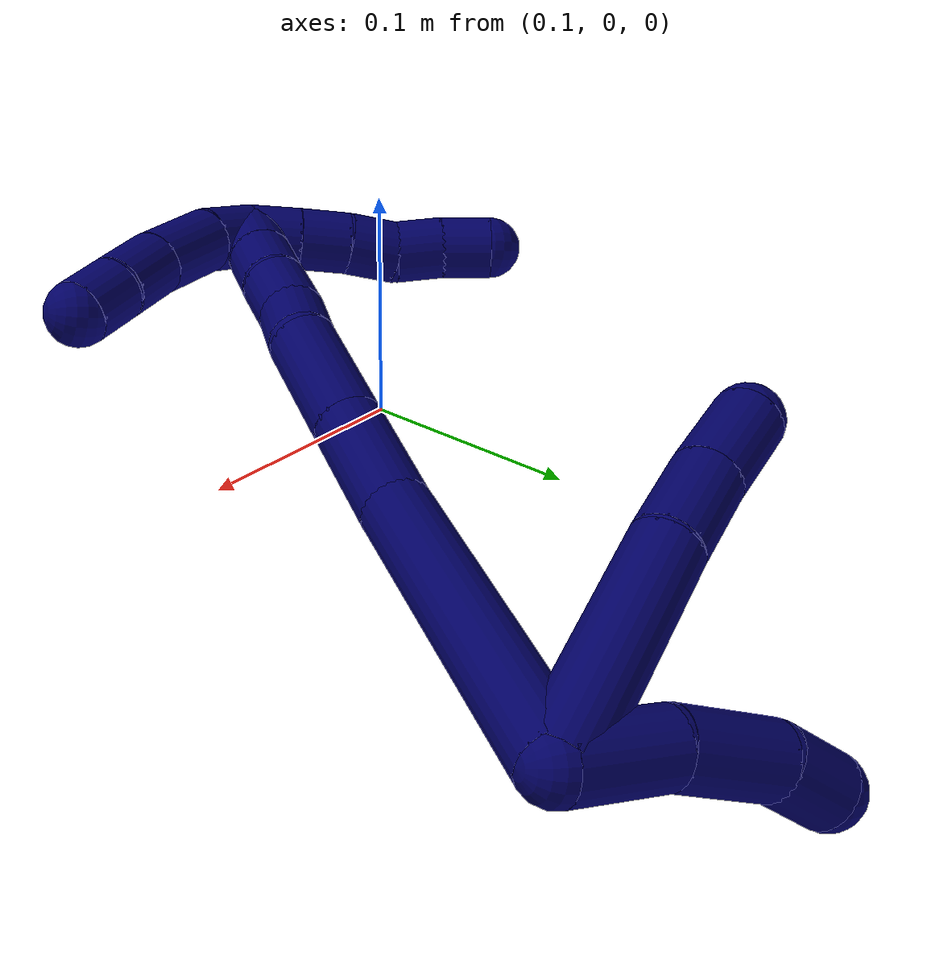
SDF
<sdf version="1.7">
 <world name="default">
  <model name="7">
   <static>0</static>
   <link name="7">
    <collision name="collision-cylinder-e_1_2_8">
     <pose>-0.016623 -0.0244 -0.028067 2.42597 -0.420319 -1.03687</pose>
     <geometry><cylinder><radius>0.0125</radius><length>0.081473</length></cylinder></geometry>
     <surface>
      <friction><ode><mu>1.16</mu><mu2>1.16</mu2><slip1>0</slip1><slip2>0</slip2></ode></friction>
      <contact><ode><kp>1e+06</kp><kd>1</kd><max_vel>0</max_vel><min_depth>0.001</min_depth></ode></contact>
     </surface>
    </collision>
    <visual name="visual-cylinder-e_1_2_8">
     <pose>-0.016623 -0.0244 -0.028067 2.42597 -0.420319 -1.03687</pose>
     <geometry><cylinder><radius>0.0125</radius><length>0.081473</length></cylinder></geometry>
     <material><ambient>0.003922 0 0.403922 1</ambient></material>
    </visual>
    <collision name="collision-cylinder-e_2_8_9">
     <pose>-0.038283 -0.059264 -0.06876 2.44957 -0.298094 -0.789331</pose>
     <geometry><cylinder><radius>0.0125</radius><length>0.034308</length></cylinder></geometry>
     <surface>
      <friction><ode><mu>1.16</mu><mu2>1.16</mu2><slip1>0</slip1><slip2>0</slip2></ode></friction>
      <contact><ode><kp>1e+06</kp><kd>1</kd><max_vel>0</max_vel><min_depth>0.001</min_depth></ode></contact>
     </surface>
    </collision>
    <visual name="visual-cylinder-e_2_8_9">
     <pose>-0.038283 -0.059264 -0.06876 2.44957 -0.298094 -0.789331</pose>
     <geometry><cylinder><radius>0.0125</radius><length>0.034308</length></cylinder></geometry>
     <material><ambient>0.003922 0 0.403922 1</ambient></material>
    </visual>
    <collision name="collision-cylinder-e_3_9_6">
     <pose>-0.048252 -0.079432 -0.094585 2.50757 -0.292326 -0.843569</pose>
     <geometry><cylinder><radius>0.0125</radius><length>0.034219</length></cylinder></geometry>
     <surface>
      <friction><ode><mu>1.16</mu><mu2>1.16</mu2><slip1>0</slip1><slip2>0</slip2></ode></friction>
      <contact><ode><kp>1e+06</kp><kd>1</kd><max_vel>0</max_vel><min_depth>0.001</min_depth></ode></contact>
     </surface>
    </collision>
    <visual name="visual-cylinder-e_3_9_6">
     <pose>-0.048252 -0.079432 -0.094585 2.50757 -0.292326 -0.843569</pose>
     <geometry><cylinder><radius>0.0125</radius><length>0.034219</length></cylinder></geometry>
     <material><ambient>0.003922 0 0.403922 1</ambient></material>
    </visual>
    <collision name="collision-cylinder-e_1_2_10">
     <pose>-0.000201 -0.000164 -0.018506 3.13275 -0.01085 -1.77424</pose>
     <geometry><cylinder><radius>0.0125</radius><length>0.037015</length></cylinder></geometry>
     <surface>
      <friction><ode><mu>1.16</mu><mu2>1.16</mu2><slip1>0</slip1><slip2>0</slip2></ode></friction>
      <contact><ode><kp>1e+06</kp><kd>1</kd><max_vel>0</max_vel><min_depth>0.001</min_depth></ode></contact>
     </surface>
    </collision>
    <visual name="visual-cylinder-e_1_2_10">
     <pose>-0.000201 -0.000164 -0.018506 3.13275 -0.01085 -1.77424</pose>
     <geometry><cylinder><radius>0.0125</radius><length>0.037015</length></cylinder></geometry>
     <material><ambient>0.003922 0 0.403922 1</ambient></material>
    </visual>
    <collision name="collision-cylinder-e_2_10_11">
     <pose>0.003115 0.001255 -0.055545 -3.05641 0.186859 -2.28793</pose>
     <geometry><cylinder><radius>0.0125</radius><length>0.037861</length></cylinder></geometry>
     <surface>
      <friction><ode><mu>1.16</mu><mu2>1.16</mu2><slip1>0</slip1><slip2>0</slip2></ode></friction>
      <contact><ode><kp>1e+06</kp><kd>1</kd><max_vel>0</max_vel><min_depth>0.001</min_depth></ode></contact>
     </surface>
    </collision>
    <visual name="visual-cylinder-e_2_10_11">
     <pose>0.003115 0.001255 -0.055545 -3.05641 0.186859 -2.28793</pose>
     <geometry><cylinder><radius>0.0125</radius><length>0.037861</length></cylinder></geometry>
     <material><ambient>0.003922 0 0.403922 1</ambient></material>
    </visual>
    <collision name="collision-cylinder-e_3_11_5">
     <pose>0.01207 0.00484 -0.085224 -2.96386 0.447737 -2.39556</pose>
     <geometry><cylinder><radius>0.0125</radius><length>0.025124</length></cylinder></geometry>
     <surface>
      <friction><ode><mu>1.16</mu><mu2>1.16</mu2><slip1>0</slip1><slip2>0</slip2></ode></friction>
      <contact><ode><kp>1e+06</kp><kd>1</kd><max_vel>0</max_vel><min_depth>0.001</min_depth></ode></contact>
     </surface>
    </collision>
    <visual name="visual-cylinder-e_3_11_5">
     <pose>0.01207 0.00484 -0.085224 -2.96386 0.447737 -2.39556</pose>
     <geometry><cylinder><radius>0.0125</radius><length>0.025124</length></cylinder></geometry>
     <material><ambient>0.003922 0 0.403922 1</ambient></material>
    </visual>
    <collision name="collision-cylinder-e_1_2_12">
     <pose>-0.000542 -0.061497 -0.004225 1.63939 -0.008788 -0.009413</pose>
     <geometry><cylinder><radius>0.0125</radius><length>0.123288</length></cylinder></geometry>
     <surface>
      <friction><ode><mu>1.16</mu><mu2>1.16</mu2><slip1>0</slip1><slip2>0</slip2></ode></friction>
      <contact><ode><kp>1e+06</kp><kd>1</kd><max_vel>0</max_vel><min_depth>0.001</min_depth></ode></contact>
     </surface>
    </collision>
    <visual name="visual-cylinder-e_1_2_12">
     <pose>-0.000542 -0.061497 -0.004225 1.63939 -0.008788 -0.009413</pose>
     <geometry><cylinder><radius>0.0125</radius><length>0.123288</length></cylinder></geometry>
     <material><ambient>0.003922 0 0.403922 1</ambient></material>
    </visual>
    <collision name="collision-cylinder-e_2_12_13">
     <pose>-0.005071 -0.144069 -0.007785 1.53925 -0.186911 -0.181138</pose>
     <geometry><cylinder><radius>0.0125</radius><length>0.042919</length></cylinder></geometry>
     <surface>
      <friction><ode><mu>1.16</mu><mu2>1.16</mu2><slip1>0</slip1><slip2>0</slip2></ode></friction>
      <contact><ode><kp>1e+06</kp><kd>1</kd><max_vel>0</max_vel><min_depth>0.001</min_depth></ode></contact>
     </surface>
    </collision>
    <visual name="visual-cylinder-e_2_12_13">
     <pose>-0.005071 -0.144069 -0.007785 1.53925 -0.186911 -0.181138</pose>
     <geometry><cylinder><radius>0.0125</radius><length>0.042919</length></cylinder></geometry>
     <material><ambient>0.003922 0 0.403922 1</ambient></material>
    </visual>
    <collision name="collision-cylinder-e_3_13_14">
     <pose>-0.013316 -0.187717 -0.006511 1.54381 -0.186328 -0.181394</pose>
     <geometry><cylinder><radius>0.0125</radius><length>0.045957</length></cylinder></geometry>
     <surface>
      <friction><ode><mu>1.16</mu><mu2>1.16</mu2><slip1>0</slip1><slip2>0</slip2></ode></friction>
      <contact><ode><kp>1e+06</kp><kd>1</kd><max_vel>0</max_vel><min_depth>0.001</min_depth></ode></contact>
     </surface>
    </collision>
    <visual name="visual-cylinder-e_3_13_14">
     <pose>-0.013316 -0.187717 -0.006511 1.54381 -0.186328 -0.181394</pose>
     <geometry><cylinder><radius>0.0125</radius><length>0.045957</length></cylinder></geometry>
     <material><ambient>0.003922 0 0.403922 1</ambient></material>
    </visual>
    <collision name="collision-cylinder-e_4_14_15">
     <pose>-0.017955 -0.220924 -0.007925 1.75886 -0.035287 -0.042634</pose>
     <geometry><cylinder><radius>0.0125</radius><length>0.021664</length></cylinder></geometry>
     <surface>
      <friction><ode><mu>1.16</mu><mu2>1.16</mu2><slip1>0</slip1><slip2>0</slip2></ode></friction>
      <contact><ode><kp>1e+06</kp><kd>1</kd><max_vel>0</max_vel><min_depth>0.001</min_depth></ode></contact>
     </surface>
    </collision>
    <visual name="visual-cylinder-e_4_14_15">
     <pose>-0.017955 -0.220924 -0.007925 1.75886 -0.035287 -0.042634</pose>
     <geometry><cylinder><radius>0.0125</radius><length>0.021664</length></cylinder></geometry>
     <material><ambient>0.003922 0 0.403922 1</ambient></material>
    </visual>
    <collision name="collision-cylinder-e_5_15_16">
     <pose>-0.019688 -0.242072 -0.010031 1.57862 -0.127821 -0.128823</pose>
     <geometry><cylinder><radius>0.0125</radius><length>0.021201</length></cylinder></geometry>
     <surface>
      <friction><ode><mu>1.16</mu><mu2>1.16</mu2><slip1>0</slip1><slip2>0</slip2></ode></friction>
      <contact><ode><kp>1e+06</kp><kd>1</kd><max_vel>0</max_vel><min_depth>0.001</min_depth></ode></contact>
     </surface>
    </collision>
    <visual name="visual-cylinder-e_5_15_16">
     <pose>-0.019688 -0.242072 -0.010031 1.57862 -0.127821 -0.128823</pose>
     <geometry><cylinder><radius>0.0125</radius><length>0.021201</length></cylinder></geometry>
     <material><ambient>0.003922 0 0.403922 1</ambient></material>
    </visual>
    <collision name="collision-cylinder-e_6_16_17">
     <pose>-0.021263 -0.264099 -0.011518 1.69217 -0.019238 -0.021727</pose>
     <geometry><cylinder><radius>0.0125</radius><length>0.0232</length></cylinder></geometry>
     <surface>
      <friction><ode><mu>1.16</mu><mu2>1.16</mu2><slip1>0</slip1><slip2>0</slip2></ode></friction>
      <contact><ode><kp>1e+06</kp><kd>1</kd><max_vel>0</max_vel><min_depth>0.001</min_depth></ode></contact>
     </surface>
    </collision>
    <visual name="visual-cylinder-e_6_16_17">
     <pose>-0.021263 -0.264099 -0.011518 1.69217 -0.019238 -0.021727</pose>
     <geometry><cylinder><radius>0.0125</radius><length>0.0232</length></cylinder></geometry>
     <material><ambient>0.003922 0 0.403922 1</ambient></material>
    </visual>
    <collision name="collision-cylinder-e_7_17_1">
     <pose>-0.021704 -0.28641 -0.014269 1.69489 -0.020024 -0.022677</pose>
     <geometry><cylinder><radius>0.0125</radius><length>0.02177</length></cylinder></geometry>
     <surface>
      <friction><ode><mu>1.16</mu><mu2>1.16</mu2><slip1>0</slip1><slip2>0</slip2></ode></friction>
      <contact><ode><kp>1e+06</kp><kd>1</kd><max_vel>0</max_vel><min_depth>0.001</min_depth></ode></contact>
     </surface>
    </collision>
    <visual name="visual-cylinder-e_7_17_1">
     <pose>-0.021704 -0.28641 -0.014269 1.69489 -0.020024 -0.022677</pose>
     <geometry><cylinder><radius>0.0125</radius><length>0.02177</length></cylinder></geometry>
     <material><ambient>0.003922 0 0.403922 1</ambient></material>
    </visual>
    <collision name="collision-cylinder-e_1_1_18">
     <pose>-0.022019 -0.293476 -0.005099 -0.341129 -0.008679 0.001495</pose>
     <geometry><cylinder><radius>0.0125</radius><length>0.022322</length></cylinder></geometry>
     <surface>
      <friction><ode><mu>1.16</mu><mu2>1.16</mu2><slip1>0</slip1><slip2>0</slip2></ode></friction>
      <contact><ode><kp>1e+06</kp><kd>1</kd><max_vel>0</max_vel><min_depth>0.001</min_depth></ode></contact>
     </surface>
    </collision>
    <visual name="visual-cylinder-e_1_1_18">
     <pose>-0.022019 -0.293476 -0.005099 -0.341129 -0.008679 0.001495</pose>
     <geometry><cylinder><radius>0.0125</radius><length>0.022322</length></cylinder></geometry>
     <material><ambient>0.003922 0 0.403922 1</ambient></material>
    </visual>
    <collision name="collision-cylinder-e_2_18_19">
     <pose>-0.020303 -0.280996 0.01854 -0.587933 0.114446 -0.034681</pose>
     <geometry><cylinder><radius>0.0125</radius><length>0.031745</length></cylinder></geometry>
     <surface>
      <friction><ode><mu>1.16</mu><mu2>1.16</mu2><slip1>0</slip1><slip2>0</slip2></ode></friction>
      <contact><ode><kp>1e+06</kp><kd>1</kd><max_vel>0</max_vel><min_depth>0.001</min_depth></ode></contact>
     </surface>
    </collision>
    <visual name="visual-cylinder-e_2_18_19">
     <pose>-0.020303 -0.280996 0.01854 -0.587933 0.114446 -0.034681</pose>
     <geometry><cylinder><radius>0.0125</radius><length>0.031745</length></cylinder></geometry>
     <material><ambient>0.003922 0 0.403922 1</ambient></material>
    </visual>
    <collision name="collision-cylinder-e_3_19_20">
     <pose>-0.016746 -0.264051 0.041171 -0.711461 0.138029 -0.051353</pose>
     <geometry><cylinder><radius>0.0125</radius><length>0.025356</length></cylinder></geometry>
     <surface>
      <friction><ode><mu>1.16</mu><mu2>1.16</mu2><slip1>0</slip1><slip2>0</slip2></ode></friction>
      <contact><ode><kp>1e+06</kp><kd>1</kd><max_vel>0</max_vel><min_depth>0.001</min_depth></ode></contact>
     </surface>
    </collision>
    <visual name="visual-cylinder-e_3_19_20">
     <pose>-0.016746 -0.264051 0.041171 -0.711461 0.138029 -0.051353</pose>
     <geometry><cylinder><radius>0.0125</radius><length>0.025356</length></cylinder></geometry>
     <material><ambient>0.003922 0 0.403922 1</ambient></material>
    </visual>
    <collision name="collision-cylinder-e_4_20_4">
     <pose>-0.012683 -0.249935 0.058775 -0.631301 0.227347 -0.074531</pose>
     <geometry><cylinder><radius>0.0125</radius><length>0.020578</length></cylinder></geometry>
     <surface>
      <friction><ode><mu>1.16</mu><mu2>1.16</mu2><slip1>0</slip1><slip2>0</slip2></ode></friction>
      <contact><ode><kp>1e+06</kp><kd>1</kd><max_vel>0</max_vel><min_depth>0.001</min_depth></ode></contact>
     </surface>
    </collision>
    <visual name="visual-cylinder-e_4_20_4">
     <pose>-0.012683 -0.249935 0.058775 -0.631301 0.227347 -0.074531</pose>
     <geometry><cylinder><radius>0.0125</radius><length>0.020578</length></cylinder></geometry>
     <material><ambient>0.003922 0 0.403922 1</ambient></material>
    </visual>
    <collision name="collision-cylinder-e_1_1_21">
     <pose>-0.022937 -0.294487 -0.025185 -2.86441 -0.101725 0.699866</pose>
     <geometry><cylinder><radius>0.0125</radius><length>0.02</length></cylinder></geometry>
     <surface>
      <friction><ode><mu>1.16</mu><mu2>1.16</mu2><slip1>0</slip1><slip2>0</slip2></ode></friction>
      <contact><ode><kp>1e+06</kp><kd>1</kd><max_vel>0</max_vel><min_depth>0.001</min_depth></ode></contact>
     </surface>
    </collision>
    <visual name="visual-cylinder-e_1_1_21">
     <pose>-0.022937 -0.294487 -0.025185 -2.86441 -0.101725 0.699866</pose>
     <geometry><cylinder><radius>0.0125</radius><length>0.02</length></cylinder></geometry>
     <material><ambient>0.003922 0 0.403922 1</ambient></material>
    </visual>
    <collision name="collision-cylinder-e_2_21_22">
     <pose>-0.024701 -0.289067 -0.044353 -2.86769 -0.074849 0.530566</pose>
     <geometry><cylinder><radius>0.0125</radius><length>0.02</length></cylinder></geometry>
     <surface>
      <friction><ode><mu>1.16</mu><mu2>1.16</mu2><slip1>0</slip1><slip2>0</slip2></ode></friction>
      <contact><ode><kp>1e+06</kp><kd>1</kd><max_vel>0</max_vel><min_depth>0.001</min_depth></ode></contact>
     </surface>
    </collision>
    <visual name="visual-cylinder-e_2_21_22">
     <pose>-0.024701 -0.289067 -0.044353 -2.86769 -0.074849 0.530566</pose>
     <geometry><cylinder><radius>0.0125</radius><length>0.02</length></cylinder></geometry>
     <material><ambient>0.003922 0 0.403922 1</ambient></material>
    </visual>
    <collision name="collision-cylinder-e_3_22_23">
     <pose>-0.025117 -0.283739 -0.063596 -2.87521 0.033152 -0.246202</pose>
     <geometry><cylinder><radius>0.0125</radius><length>0.02</length></cylinder></geometry>
     <surface>
      <friction><ode><mu>1.16</mu><mu2>1.16</mu2><slip1>0</slip1><slip2>0</slip2></ode></friction>
      <contact><ode><kp>1e+06</kp><kd>1</kd><max_vel>0</max_vel><min_depth>0.001</min_depth></ode></contact>
     </surface>
    </collision>
    <visual name="visual-cylinder-e_3_22_23">
     <pose>-0.025117 -0.283739 -0.063596 -2.87521 0.033152 -0.246202</pose>
     <geometry><cylinder><radius>0.0125</radius><length>0.02</length></cylinder></geometry>
     <material><ambient>0.003922 0 0.403922 1</ambient></material>
    </visual>
    <collision name="collision-cylinder-e_4_23_24">
     <pose>-0.027387 -0.278757 -0.082603 -2.89562 -0.263169 1.63905</pose>
     <geometry><cylinder><radius>0.0125</radius><length>0.02</length></cylinder></geometry>
     <surface>
      <friction><ode><mu>1.16</mu><mu2>1.16</mu2><slip1>0</slip1><slip2>0</slip2></ode></friction>
      <contact><ode><kp>1e+06</kp><kd>1</kd><max_vel>0</max_vel><min_depth>0.001</min_depth></ode></contact>
     </surface>
    </collision>
    <visual name="visual-cylinder-e_4_23_24">
     <pose>-0.027387 -0.278757 -0.082603 -2.89562 -0.263169 1.63905</pose>
     <geometry><cylinder><radius>0.0125</radius><length>0.02</length></cylinder></geometry>
     <material><ambient>0.003922 0 0.403922 1</ambient></material>
    </visual>
    <collision name="collision-cylinder-e_5_24_3">
     <pose>-0.032202 -0.272467 -0.100889 -2.7258 -0.223274 0.976964</pose>
     <geometry><cylinder><radius>0.0125</radius><length>0.02</length></cylinder></geometry>
     <surface>
      <friction><ode><mu>1.16</mu><mu2>1.16</mu2><slip1>0</slip1><slip2>0</slip2></ode></friction>
      <contact><ode><kp>1e+06</kp><kd>1</kd><max_vel>0</max_vel><min_depth>0.001</min_depth></ode></contact>
     </surface>
    </collision>
    <visual name="visual-cylinder-e_5_24_3">
     <pose>-0.032202 -0.272467 -0.100889 -2.7258 -0.223274 0.976964</pose>
     <geometry><cylinder><radius>0.0125</radius><length>0.02</length></cylinder></geometry>
     <material><ambient>0.003922 0 0.403922 1</ambient></material>
    </visual>
    <collision name="collision-sphere-3">
     <pose>-0.034417 -0.268528 -0.10981 0 -0 0</pose>
     <geometry><sphere><radius>0.0125</radius></sphere></geometry>
     <surface>
      <friction><ode><mu>1.16</mu><mu2>1.16</mu2><slip1>0</slip1><slip2>0</slip2></ode></friction>
      <contact><ode><kp>1e+06</kp><kd>1</kd><max_vel>0</max_vel><min_depth>0.001</min_depth></ode></contact>
     </surface>
    </collision>
    <visual name="visual-sphere-3">
     <pose>-0.034417 -0.268528 -0.10981 0 -0 0</pose>
     <geometry><sphere><radius>0.0125</radius></sphere></geometry>
     <material><ambient>0.003922 0 0.403922 1</ambient></material>
    </visual>
    <collision name="collision-sphere-24">
     <pose>-0.029988 -0.276406 -0.091968 0 -0 0</pose>
     <geometry><sphere><radius>0.0125</radius></sphere></geometry>
     <surface>
      <friction><ode><mu>1.16</mu><mu2>1.16</mu2><slip1>0</slip1><slip2>0</slip2></ode></friction>
      <contact><ode><kp>1e+06</kp><kd>1</kd><max_vel>0</max_vel><min_depth>0.001</min_depth></ode></contact>
     </surface>
    </collision>
    <visual name="visual-sphere-24">
     <pose>-0.029988 -0.276406 -0.091968 0 -0 0</pose>
     <geometry><sphere><radius>0.0125</radius></sphere></geometry>
     <material><ambient>0.003922 0 0.403922 1</ambient></material>
    </visual>
    <collision name="collision-sphere-23">
     <pose>-0.024785 -0.281108 -0.073238 0 -0 0</pose>
     <geometry><sphere><radius>0.0125</radius></sphere></geometry>
     <surface>
      <friction><ode><mu>1.16</mu><mu2>1.16</mu2><slip1>0</slip1><slip2>0</slip2></ode></friction>
      <contact><ode><kp>1e+06</kp><kd>1</kd><max_vel>0</max_vel><min_depth>0.001</min_depth></ode></contact>
     </surface>
    </collision>
    <visual name="visual-sphere-23">
     <pose>-0.024785 -0.281108 -0.073238 0 -0 0</pose>
     <geometry><sphere><radius>0.0125</radius></sphere></geometry>
     <material><ambient>0.003922 0 0.403922 1</ambient></material>
    </visual>
    <collision name="collision-sphere-22">
     <pose>-0.025448 -0.28637 -0.053954 0 -0 0</pose>
     <geometry><sphere><radius>0.0125</radius></sphere></geometry>
     <surface>
      <friction><ode><mu>1.16</mu><mu2>1.16</mu2><slip1>0</slip1><slip2>0</slip2></ode></friction>
      <contact><ode><kp>1e+06</kp><kd>1</kd><max_vel>0</max_vel><min_depth>0.001</min_depth></ode></contact>
     </surface>
    </collision>
    <visual name="visual-sphere-22">
     <pose>-0.025448 -0.28637 -0.053954 0 -0 0</pose>
     <geometry><sphere><radius>0.0125</radius></sphere></geometry>
     <material><ambient>0.003922 0 0.403922 1</ambient></material>
    </visual>
    <collision name="collision-sphere-21">
     <pose>-0.023953 -0.291765 -0.034753 0 -0 0</pose>
     <geometry><sphere><radius>0.0125</radius></sphere></geometry>
     <surface>
      <friction><ode><mu>1.16</mu><mu2>1.16</mu2><slip1>0</slip1><slip2>0</slip2></ode></friction>
      <contact><ode><kp>1e+06</kp><kd>1</kd><max_vel>0</max_vel><min_depth>0.001</min_depth></ode></contact>
     </surface>
    </collision>
    <visual name="visual-sphere-21">
     <pose>-0.023953 -0.291765 -0.034753 0 -0 0</pose>
     <geometry><sphere><radius>0.0125</radius></sphere></geometry>
     <material><ambient>0.003922 0 0.403922 1</ambient></material>
    </visual>
    <collision name="collision-sphere-4">
     <pose>-0.010364 -0.244019 0.066866 0 -0 0</pose>
     <geometry><sphere><radius>0.0125</radius></sphere></geometry>
     <surface>
      <friction><ode><mu>1.16</mu><mu2>1.16</mu2><slip1>0</slip1><slip2>0</slip2></ode></friction>
      <contact><ode><kp>1e+06</kp><kd>1</kd><max_vel>0</max_vel><min_depth>0.001</min_depth></ode></contact>
     </surface>
    </collision>
    <visual name="visual-sphere-4">
     <pose>-0.010364 -0.244019 0.066866 0 -0 0</pose>
     <geometry><sphere><radius>0.0125</radius></sphere></geometry>
     <material><ambient>0.003922 0 0.403922 1</ambient></material>
    </visual>
    <collision name="collision-sphere-20">
     <pose>-0.015002 -0.255852 0.050683 0 -0 0</pose>
     <geometry><sphere><radius>0.0125</radius></sphere></geometry>
     <surface>
      <friction><ode><mu>1.16</mu><mu2>1.16</mu2><slip1>0</slip1><slip2>0</slip2></ode></friction>
      <contact><ode><kp>1e+06</kp><kd>1</kd><max_vel>0</max_vel><min_depth>0.001</min_depth></ode></contact>
     </surface>
    </collision>
    <visual name="visual-sphere-20">
     <pose>-0.015002 -0.255852 0.050683 0 -0 0</pose>
     <geometry><sphere><radius>0.0125</radius></sphere></geometry>
     <material><ambient>0.003922 0 0.403922 1</ambient></material>
    </visual>
    <collision name="collision-sphere-11">
     <pose>0.006632 0.002838 -0.074079 0 -0 0</pose>
     <geometry><sphere><radius>0.0125</radius></sphere></geometry>
     <surface>
      <friction><ode><mu>1.16</mu><mu2>1.16</mu2><slip1>0</slip1><slip2>0</slip2></ode></friction>
      <contact><ode><kp>1e+06</kp><kd>1</kd><max_vel>0</max_vel><min_depth>0.001</min_depth></ode></contact>
     </surface>
    </collision>
    <visual name="visual-sphere-11">
     <pose>0.006632 0.002838 -0.074079 0 -0 0</pose>
     <geometry><sphere><radius>0.0125</radius></sphere></geometry>
     <material><ambient>0.003922 0 0.403922 1</ambient></material>
    </visual>
    <collision name="collision-sphere-10">
     <pose>-0.000402 -0.000327 -0.037011 0 -0 0</pose>
     <geometry><sphere><radius>0.0125</radius></sphere></geometry>
     <surface>
      <friction><ode><mu>1.16</mu><mu2>1.16</mu2><slip1>0</slip1><slip2>0</slip2></ode></friction>
      <contact><ode><kp>1e+06</kp><kd>1</kd><max_vel>0</max_vel><min_depth>0.001</min_depth></ode></contact>
     </surface>
    </collision>
    <visual name="visual-sphere-10">
     <pose>-0.000402 -0.000327 -0.037011 0 -0 0</pose>
     <geometry><sphere><radius>0.0125</radius></sphere></geometry>
     <material><ambient>0.003922 0 0.403922 1</ambient></material>
    </visual>
    <collision name="collision-sphere-6">
     <pose>-0.053183 -0.089138 -0.107784 0 -0 0</pose>
     <geometry><sphere><radius>0.0125</radius></sphere></geometry>
     <surface>
      <friction><ode><mu>1.16</mu><mu2>1.16</mu2><slip1>0</slip1><slip2>0</slip2></ode></friction>
      <contact><ode><kp>1e+06</kp><kd>1</kd><max_vel>0</max_vel><min_depth>0.001</min_depth></ode></contact>
     </surface>
    </collision>
    <visual name="visual-sphere-6">
     <pose>-0.053183 -0.089138 -0.107784 0 -0 0</pose>
     <geometry><sphere><radius>0.0125</radius></sphere></geometry>
     <material><ambient>0.003922 0 0.403922 1</ambient></material>
    </visual>
    <collision name="collision-sphere-9">
     <pose>-0.043321 -0.069727 -0.081385 0 -0 0</pose>
     <geometry><sphere><radius>0.0125</radius></sphere></geometry>
     <surface>
      <friction><ode><mu>1.16</mu><mu2>1.16</mu2><slip1>0</slip1><slip2>0</slip2></ode></friction>
      <contact><ode><kp>1e+06</kp><kd>1</kd><max_vel>0</max_vel><min_depth>0.001</min_depth></ode></contact>
     </surface>
    </collision>
    <visual name="visual-sphere-9">
     <pose>-0.043321 -0.069727 -0.081385 0 -0 0</pose>
     <geometry><sphere><radius>0.0125</radius></sphere></geometry>
     <material><ambient>0.003922 0 0.403922 1</ambient></material>
    </visual>
    <collision name="collision-sphere-2">
     <geometry><sphere><radius>0.0125</radius></sphere></geometry>
     <surface>
      <friction><ode><mu>1.16</mu><mu2>1.16</mu2><slip1>0</slip1><slip2>0</slip2></ode></friction>
      <contact><ode><kp>1e+06</kp><kd>1</kd><max_vel>0</max_vel><min_depth>0.001</min_depth></ode></contact>
     </surface>
    </collision>
    <visual name="visual-sphere-2">
     <geometry><sphere><radius>0.0125</radius></sphere></geometry>
     <material><ambient>0.003922 0 0.403922 1</ambient></material>
    </visual>
    <collision name="collision-sphere-19">
     <pose>-0.01849 -0.27225 0.03166 0 -0 0</pose>
     <geometry><sphere><radius>0.0125</radius></sphere></geometry>
     <surface>
      <friction><ode><mu>1.16</mu><mu2>1.16</mu2><slip1>0</slip1><slip2>0</slip2></ode></friction>
      <contact><ode><kp>1e+06</kp><kd>1</kd><max_vel>0</max_vel><min_depth>0.001</min_depth></ode></contact>
     </surface>
    </collision>
    <visual name="visual-sphere-19">
     <pose>-0.01849 -0.27225 0.03166 0 -0 0</pose>
     <geometry><sphere><radius>0.0125</radius></sphere></geometry>
     <material><ambient>0.003922 0 0.403922 1</ambient></material>
    </visual>
    <collision name="collision-sphere-8">
     <pose>-0.033245 -0.048801 -0.056135 0 -0 0</pose>
     <geometry><sphere><radius>0.0125</radius></sphere></geometry>
     <surface>
      <friction><ode><mu>1.16</mu><mu2>1.16</mu2><slip1>0</slip1><slip2>0</slip2></ode></friction>
      <contact><ode><kp>1e+06</kp><kd>1</kd><max_vel>0</max_vel><min_depth>0.001</min_depth></ode></contact>
     </surface>
    </collision>
    <visual name="visual-sphere-8">
     <pose>-0.033245 -0.048801 -0.056135 0 -0 0</pose>
     <geometry><sphere><radius>0.0125</radius></sphere></geometry>
     <material><ambient>0.003922 0 0.403922 1</ambient></material>
    </visual>
    <collision name="collision-sphere-5">
     <pose>0.017509 0.006842 -0.096369 0 -0 0</pose>
     <geometry><sphere><radius>0.0125</radius></sphere></geometry>
     <surface>
      <friction><ode><mu>1.16</mu><mu2>1.16</mu2><slip1>0</slip1><slip2>0</slip2></ode></friction>
      <contact><ode><kp>1e+06</kp><kd>1</kd><max_vel>0</max_vel><min_depth>0.001</min_depth></ode></contact>
     </surface>
    </collision>
    <visual name="visual-sphere-5">
     <pose>0.017509 0.006842 -0.096369 0 -0 0</pose>
     <geometry><sphere><radius>0.0125</radius></sphere></geometry>
     <material><ambient>0.003922 0 0.403922 1</ambient></material>
    </visual>
    <collision name="collision-sphere-12">
     <pose>-0.001083 -0.122993 -0.00845 0 -0 0</pose>
     <geometry><sphere><radius>0.0125</radius></sphere></geometry>
     <surface>
      <friction><ode><mu>1.16</mu><mu2>1.16</mu2><slip1>0</slip1><slip2>0</slip2></ode></friction>
      <contact><ode><kp>1e+06</kp><kd>1</kd><max_vel>0</max_vel><min_depth>0.001</min_depth></ode></contact>
     </surface>
    </collision>
    <visual name="visual-sphere-12">
     <pose>-0.001083 -0.122993 -0.00845 0 -0 0</pose>
     <geometry><sphere><radius>0.0125</radius></sphere></geometry>
     <material><ambient>0.003922 0 0.403922 1</ambient></material>
    </visual>
    <collision name="collision-sphere-13">
     <pose>-0.009059 -0.165144 -0.00712 0 -0 0</pose>
     <geometry><sphere><radius>0.0125</radius></sphere></geometry>
     <surface>
      <friction><ode><mu>1.16</mu><mu2>1.16</mu2><slip1>0</slip1><slip2>0</slip2></ode></friction>
      <contact><ode><kp>1e+06</kp><kd>1</kd><max_vel>0</max_vel><min_depth>0.001</min_depth></ode></contact>
     </surface>
    </collision>
    <visual name="visual-sphere-13">
     <pose>-0.009059 -0.165144 -0.00712 0 -0 0</pose>
     <geometry><sphere><radius>0.0125</radius></sphere></geometry>
     <material><ambient>0.003922 0 0.403922 1</ambient></material>
    </visual>
    <collision name="collision-sphere-14">
     <pose>-0.017573 -0.21029 -0.005901 0 -0 0</pose>
     <geometry><sphere><radius>0.0125</radius></sphere></geometry>
     <surface>
      <friction><ode><mu>1.16</mu><mu2>1.16</mu2><slip1>0</slip1><slip2>0</slip2></ode></friction>
      <contact><ode><kp>1e+06</kp><kd>1</kd><max_vel>0</max_vel><min_depth>0.001</min_depth></ode></contact>
     </surface>
    </collision>
    <visual name="visual-sphere-14">
     <pose>-0.017573 -0.21029 -0.005901 0 -0 0</pose>
     <geometry><sphere><radius>0.0125</radius></sphere></geometry>
     <material><ambient>0.003922 0 0.403922 1</ambient></material>
    </visual>
    <collision name="collision-sphere-15">
     <pose>-0.018337 -0.231559 -0.009949 0 -0 0</pose>
     <geometry><sphere><radius>0.0125</radius></sphere></geometry>
     <surface>
      <friction><ode><mu>1.16</mu><mu2>1.16</mu2><slip1>0</slip1><slip2>0</slip2></ode></friction>
      <contact><ode><kp>1e+06</kp><kd>1</kd><max_vel>0</max_vel><min_depth>0.001</min_depth></ode></contact>
     </surface>
    </collision>
    <visual name="visual-sphere-15">
     <pose>-0.018337 -0.231559 -0.009949 0 -0 0</pose>
     <geometry><sphere><radius>0.0125</radius></sphere></geometry>
     <material><ambient>0.003922 0 0.403922 1</ambient></material>
    </visual>
    <collision name="collision-sphere-16">
     <pose>-0.02104 -0.252586 -0.010114 0 -0 0</pose>
     <geometry><sphere><radius>0.0125</radius></sphere></geometry>
     <surface>
      <friction><ode><mu>1.16</mu><mu2>1.16</mu2><slip1>0</slip1><slip2>0</slip2></ode></friction>
      <contact><ode><kp>1e+06</kp><kd>1</kd><max_vel>0</max_vel><min_depth>0.001</min_depth></ode></contact>
     </surface>
    </collision>
    <visual name="visual-sphere-16">
     <pose>-0.02104 -0.252586 -0.010114 0 -0 0</pose>
     <geometry><sphere><radius>0.0125</radius></sphere></geometry>
     <material><ambient>0.003922 0 0.403922 1</ambient></material>
    </visual>
    <collision name="collision-sphere-17">
     <pose>-0.021486 -0.275611 -0.012922 0 -0 0</pose>
     <geometry><sphere><radius>0.0125</radius></sphere></geometry>
     <surface>
      <friction><ode><mu>1.16</mu><mu2>1.16</mu2><slip1>0</slip1><slip2>0</slip2></ode></friction>
      <contact><ode><kp>1e+06</kp><kd>1</kd><max_vel>0</max_vel><min_depth>0.001</min_depth></ode></contact>
     </surface>
    </collision>
    <visual name="visual-sphere-17">
     <pose>-0.021486 -0.275611 -0.012922 0 -0 0</pose>
     <geometry><sphere><radius>0.0125</radius></sphere></geometry>
     <material><ambient>0.003922 0 0.403922 1</ambient></material>
    </visual>
    <collision name="collision-sphere-1">
     <pose>-0.021922 -0.297209 -0.015616 0 -0 0</pose>
     <geometry><sphere><radius>0.0125</radius></sphere></geometry>
     <surface>
      <friction><ode><mu>1.16</mu><mu2>1.16</mu2><slip1>0</slip1><slip2>0</slip2></ode></friction>
      <contact><ode><kp>1e+06</kp><kd>1</kd><max_vel>0</max_vel><min_depth>0.001</min_depth></ode></contact>
     </surface>
    </collision>
    <visual name="visual-sphere-1">
     <pose>-0.021922 -0.297209 -0.015616 0 -0 0</pose>
     <geometry><sphere><radius>0.0125</radius></sphere></geometry>
     <material><ambient>0.003922 0 0.403922 1</ambient></material>
    </visual>
    <collision name="collision-sphere-18">
     <pose>-0.022115 -0.289742 0.005419 0 -0 0</pose>
     <geometry><sphere><radius>0.0125</radius></sphere></geometry>
     <surface>
      <friction><ode><mu>1.16</mu><mu2>1.16</mu2><slip1>0</slip1><slip2>0</slip2></ode></friction>
      <contact><ode><kp>1e+06</kp><kd>1</kd><max_vel>0</max_vel><min_depth>0.001</min_depth></ode></contact>
     </surface>
    </collision>
    <visual name="visual-sphere-18">
     <pose>-0.022115 -0.289742 0.005419 0 -0 0</pose>
     <geometry><sphere><radius>0.0125</radius></sphere></geometry>
     <material><ambient>0.003922 0 0.403922 1</ambient></material>
    </visual>
    <inertial>
     <pose>-0.014723 -0.142571 -0.02471 0 -0 0</pose>
     <mass>0.75</mass>
     <inertia>
      <ixx>0.000159</ixx>
      <ixy>0</ixy>
      <ixz>0</ixz>
      <iyy>-9.2e-05</iyy>
      <iyz>0</iyz>
      <izz>0.000219</izz>
     </inertia>
    </inertial>
   </link>
   <pose>0.302445 0.246469 0.050871 -0.429156 1.33747 -0.842688</pose>
  </model>
 </world>
</sdf>
